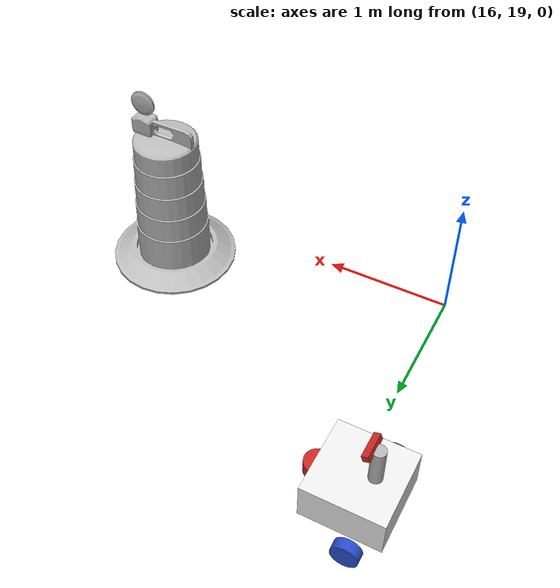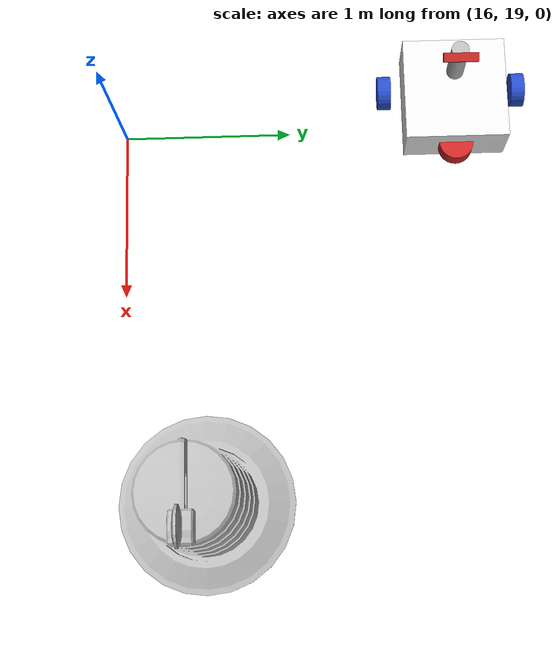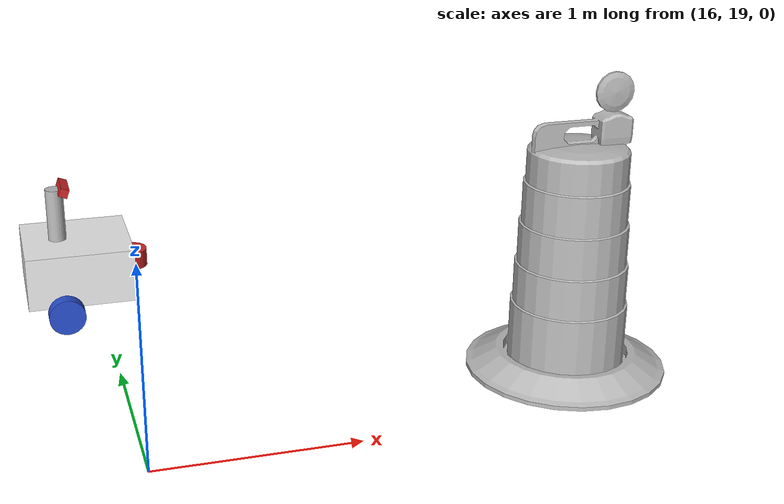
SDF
<sdf version="1.7">
 <world name="default">
  <model name="Construction Barrel_clone_2">
   <link name="link">
    <inertial>
     <pose>0 0 0.4 0 -0 0</pose>
     <mass>500</mass>
     <inertia><ixx>51.2096</ixx><iyy>51.2096</iyy><izz>25</izz><ixy>0</ixy><ixz>0</ixz><iyz>0</iyz></inertia>
    </inertial>
    <collision name="collision">
     <geometry><mesh><uri>model://construction_barrel/meshes/construction_barrel.dae</uri></mesh></geometry>
    </collision>
    <visual name="visual">
     <geometry><mesh><uri>model://construction_barrel/meshes/construction_barrel.dae</uri></mesh></geometry>
    </visual>
   </link>
   <pose>18.2399 19.476 1e-06 3e-06 2e-06 -9.6e-05</pose>
  </model>
  <model name="decaf">
   <link name="base_link">
    <inertial>
     <pose>0.113153 0 0.158108 0 -0 0</pose>
     <mass>11.1</mass>
     <inertia>
      <ixx>0.420487</ixx>
      <ixy>0</ixy>
      <ixz>0.0185838</ixz>
      <iyy>0.474047</iyy>
      <iyz>0</iyz>
      <izz>0.65736</izz>
     </inertia>
    </inertial>
    <collision name="base_link_fixed_joint_lump__camera_mount_collision">
     <pose>0 0 0.45 0 -0 0</pose>
     <geometry><cylinder><length>0.3</length><radius>0.05</radius></cylinder></geometry>
    </collision>
    <collision name="base_link_fixed_joint_lump__chassis_collision_1">
     <pose>0.1 0 0.15 0 -0 0</pose>
     <geometry><box><size>0.6 0.6 0.3</size></box></geometry>
    </collision>
    <collision name="base_link_fixed_joint_lump__caster_wheel_collision_2">
     <pose>0.28 0 0 0 -0 0</pose>
     <geometry><sphere><radius>0.1</radius></sphere></geometry>
     <surface><friction><ode><mu>0.001</mu><mu2>0.001</mu2></ode></friction></surface>
    </collision>
    <collision name="base_link_fixed_joint_lump__laser_frame_collision_3">
     <pose>0.4 0 0.15 0 -0 0</pose>
     <geometry><cylinder><length>0.1</length><radius>0.1</radius></cylinder></geometry>
    </collision>
    <visual name="base_link_fixed_joint_lump__camera_mount_visual">
     <pose>0 0 0.45 0 -0 0</pose>
     <geometry><cylinder><length>0.3</length><radius>0.05</radius></cylinder></geometry>
    </visual>
    <visual name="base_link_fixed_joint_lump__chassis_visual_1">
     <pose>0.1 0 0.15 0 -0 0</pose>
     <geometry><box><size>0.6 0.6 0.3</size></box></geometry>
     <material>
      <script><name>Gazebo/White</name><uri>file://media/materials/scripts/gazebo.material</uri></script>
     </material>
    </visual>
    <visual name="base_link_fixed_joint_lump__camera_link_visual_2">
     <pose>0.05 0 0.6 0 0.36 0</pose>
     <geometry><box><size>0.05 0.2 0.05</size></box></geometry>
     <material>
      <script><name>Gazebo/Red</name><uri>file://media/materials/scripts/gazebo.material</uri></script>
     </material>
    </visual>
    <visual name="base_link_fixed_joint_lump__caster_wheel_visual_3">
     <pose>0.28 0 0 0 -0 0</pose>
     <geometry><sphere><radius>0.1</radius></sphere></geometry>
     <material>
      <script><name>Gazebo/Black</name><uri>file://media/materials/scripts/gazebo.material</uri></script>
     </material>
    </visual>
    <visual name="base_link_fixed_joint_lump__laser_frame_visual_4">
     <pose>0.4 0 0.15 0 -0 0</pose>
     <geometry><cylinder><length>0.1</length><radius>0.1</radius></cylinder></geometry>
     <material>
      <script><name>Gazebo/Red</name><uri>file://media/materials/scripts/gazebo.material</uri></script>
     </material>
    </visual>
    <sensor name="camera" type="depth">
     <visualize>1</visualize>
     <update_rate>10</update_rate>
     <camera>
      <horizontal_fov>1.089</horizontal_fov>
      <image><format>B8G8R8</format><width>320</width><height>240</height></image>
      <clip><near>0.05</near><far>8</far></clip>
     </camera>
     <plugin name="camera_controller" filename="libgazebo_ros_camera.so">
      <frame_name>camera_link_optical</frame_name>
      <min_depth>0.1</min_depth>
      <max_depth>100</max_depth>
      <update_rate>0.0</update_rate>
      <always_on>1</always_on>
     </plugin>
     <pose>0.05 0 0.6 0 0.36 0</pose>
    </sensor>
    <sensor name="laser" type="ray">
     <visualize>1</visualize>
     <update_rate>10</update_rate>
     <ray>
      <scan>
       <horizontal>
        <samples>361</samples>
        <resolution>1</resolution>
        <min_angle>-1.5708</min_angle>
        <max_angle>1.5708</max_angle>
       </horizontal>
       <vertical><samples>1</samples><min_angle>0</min_angle><max_angle>0</max_angle></vertical>
      </scan>
      <range><min>0.3</min><max>12</max><resolution>0.01</resolution></range>
     </ray>
     <plugin name="laser_controller" filename="libgazebo_ros_ray_sensor.so">
      <ros><argument>~/out:=lidar_scan</argument></ros>
      <output_type>sensor_msgs/LaserScan</output_type>
      <frame_name>laser_frame</frame_name>
     </plugin>
     <pose>0.4 0 0.15 0 -0 0</pose>
    </sensor>
    <sensor name="gps_sensor" type="gps">
     <always_on>1</always_on>
     <update_rate>100</update_rate>
     <gps>
      <position_sensing>
       <horizontal><noise type="gaussian"><mean>0</mean><stddev>0.01</stddev></noise></horizontal>
       <vertical><noise type="gaussian"><mean>0</mean><stddev>0.01</stddev></noise></vertical>
      </position_sensing>
     </gps>
     <plugin name="gps_plugin" filename="libgazebo_ros_gps_sensor.so">
      <ros><namespace>/gps</namespace><remapping>~/out:=fix</remapping></ros>
      <body_name>gps_link</body_name>
      <frame_name>gps_link</frame_name>
     </plugin>
    </sensor>
    <sensor name="imu_sensor" type="imu">
     <always_on>1</always_on>
     <update_rate>100</update_rate>
     <visualize>1</visualize>
     <topic>__default_topic__</topic>
     <plugin name="imu_plugin" filename="libgazebo_ros_imu_sensor.so">
      <ros><namespace>/imu</namespace><remapping>~/out:=data</remapping></ros>
      <update_rate>100.0</update_rate>
      <gaussian_noise>0.0</gaussian_noise>
      <body_name>imu_link</body_name>
      <frame_name>imu_link</frame_name>
      <initial_orientation_as_reference>1</initial_orientation_as_reference>
      <rpy_offset_covariance>0.01 0.01 0.01</rpy_offset_covariance>
      <angular_velocity_covariance>0.01 0.01 0.01</angular_velocity_covariance>
      <linear_acceleration_covariance>0.1 0.1 0.1</linear_acceleration_covariance>
     </plugin>
    </sensor>
   </link>
   <joint name="left_wheel_joint" type="revolute">
    <pose relative_to="base_link">0 0.405 0 -1.5708 0 0</pose>
    <parent>base_link</parent>
    <child>left_wheel</child>
    <axis>
     <xyz>0 0 1</xyz>
     <limit><lower>-1e+16</lower><upper>1e+16</upper></limit>
     <dynamics><spring_reference>0</spring_reference><spring_stiffness>0</spring_stiffness></dynamics>
    </axis>
   </joint>
   <link name="left_wheel">
    <pose relative_to="left_wheel_joint">0 0 0 0 -0 0</pose>
    <inertial>
     <mass>0.4</mass>
     <inertia>
      <ixx>0.00121333</ixx>
      <ixy>0</ixy>
      <ixz>0</ixz>
      <iyy>0.00121333</iyy>
      <iyz>0</iyz>
      <izz>0.002</izz>
     </inertia>
    </inertial>
    <collision name="left_wheel_collision"><geometry><sphere><radius>0.1</radius></sphere></geometry></collision>
    <visual name="left_wheel_visual">
     <geometry><cylinder><length>0.08</length><radius>0.1</radius></cylinder></geometry>
     <material>
      <script><name>Gazebo/Blue</name><uri>file://media/materials/scripts/gazebo.material</uri></script>
     </material>
    </visual>
   </link>
   <joint name="right_wheel_joint" type="revolute">
    <pose relative_to="base_link">0 -0.405 0 1.5708 -0 0</pose>
    <parent>base_link</parent>
    <child>right_wheel</child>
    <axis>
     <xyz>0 0 -1</xyz>
     <limit><lower>-1e+16</lower><upper>1e+16</upper></limit>
     <dynamics><spring_reference>0</spring_reference><spring_stiffness>0</spring_stiffness></dynamics>
    </axis>
   </joint>
   <link name="right_wheel">
    <pose relative_to="right_wheel_joint">0 0 0 0 -0 0</pose>
    <inertial>
     <mass>0.4</mass>
     <inertia>
      <ixx>0.00121333</ixx>
      <ixy>0</ixy>
      <ixz>0</ixz>
      <iyy>0.00121333</iyy>
      <iyz>0</iyz>
      <izz>0.002</izz>
     </inertia>
    </inertial>
    <collision name="right_wheel_collision"><geometry><sphere><radius>0.1</radius></sphere></geometry></collision>
    <visual name="right_wheel_visual">
     <geometry><cylinder><length>0.08</length><radius>0.1</radius></cylinder></geometry>
     <material>
      <script><name>Gazebo/Blue</name><uri>file://media/materials/scripts/gazebo.material</uri></script>
     </material>
    </visual>
   </link>
   <static>0</static>
   <plugin name="gazebo_ros2_control" filename="libgazebo_ros2_control.so">
    <parameters>/home/ammarvora/decaf_ws/install/description/share/description/config/my_controllers.yaml</parameters>
   </plugin>
   <pose>15.7877 20.9882 0.099995 1e-05 -1.7e-05 -0.001287</pose>
  </model>
 </world>
</sdf>
